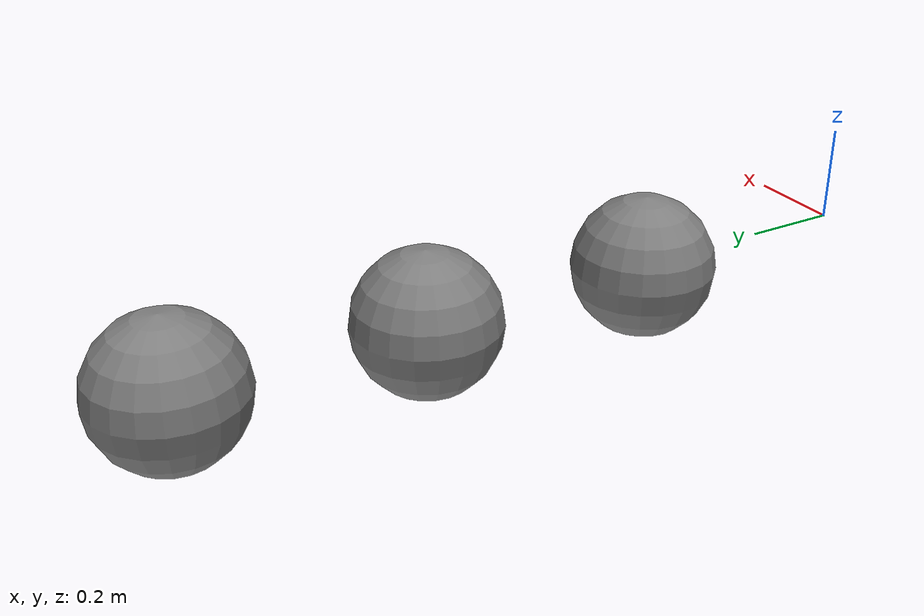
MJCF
<mujoco model="pendulum">
  <compiler inertiafromgeom="true"/>
  <option gravity="0 0 -9.81" timestep="0.02"/>
	<default>
		<geom contype="0" conaffinity="0"/>
  </default>
  <custom>
    <!-- brax physics parameters -->
    <numeric data="1000.0" name="constraint_limit_stiffness"/>
    <numeric data="5000.0" name="constraint_stiffness"/>
    <numeric data="1.0" name="constraint_ang_damping"/>
    <numeric data="2.0" name="constraint_vel_damping"/>
  </custom>
  <worldbody>
    <body name="body1" pos="0 0 0">
      <joint axis="1 0 0" name="hinge1" pos="0 0 0" type="hinge"/>
      <geom name="sphere1" pos="0 0.5 0" size=".15" mass="1" type="sphere"/>
      <body name="body2" pos="0 0.5 0">
        <joint axis="1 0 0" name="hinge2" pos="0 0 0" type="hinge"/>
        <geom name="sphere2" pos="0 0.5 0" size=".15" mass="1" type="sphere"/>
        <body name="body3" pos="0 0.5 0">
          <joint axis="1 0 0" name="hinge3" pos="0 0 0" type="hinge"/>
          <geom name="sphere3" pos="0 0.5 0" size=".15" mass="1" type="sphere"/>
        </body>
      </body>
    </body>
  </worldbody>
  <actuator>
    <motor ctrllimited="true" ctrlrange="-100.0 100.0" joint="hinge1" gear="150 0 0 0 0 0"/>
    <motor ctrllimited="true" ctrlrange="-100.0 100.0" joint="hinge2" gear="150 0 0 0 0 0"/>
    <motor ctrllimited="true" ctrlrange="-100.0 100.0" joint="hinge3" gear="150 0 0 0 0 0"/>
  </actuator>
</mujoco>
